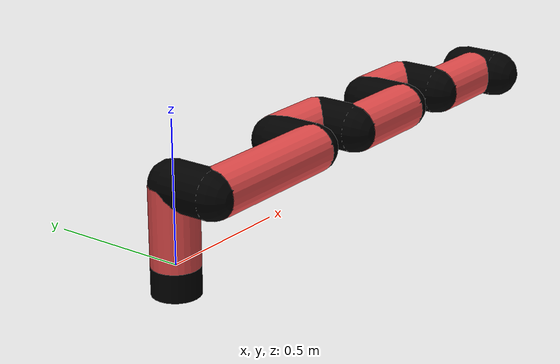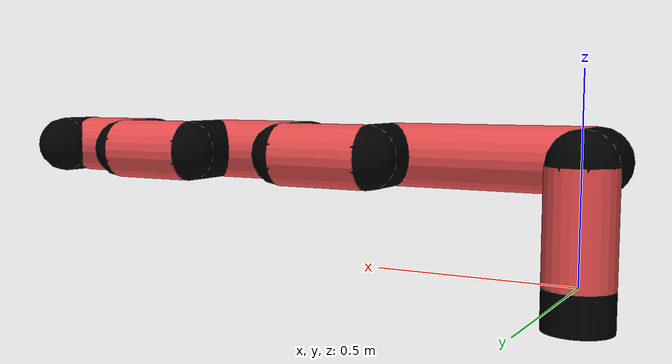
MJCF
<mujoco model="manipulator">
		<compiler angle="degree" coordinate="local" inertiafromgeom="auto" meshdir="meshes/"/>
		<option gravity="0 0 0" integrator="RK4" iterations="30" timestep="0.01"/>

		<default>
		<joint armature="1" limited="true" stiffness="10" damping="15" frictionloss="5.0"/>
		<geom conaffinity="1" condim="3" contype="1" friction=".5 .1 .1" margin="0.002"/>
		<motor ctrllimited="true"/>
		<position ctrllimited="true"/>
		</default>

		<asset>
		<texture builtin="gradient" height="100" rgb1="1.0 1.0 1.0" rgb2="1.0 1.0 1.0" type="skybox" width="100"/>
		<texture builtin="flat" height="32" name="arm_tex" rgb1="0.9 0.3 0.3" type="2d" width="32"/>
		<texture builtin="flat" height="32" name="gripper_tex" rgb1="0.0 0.0 0.0" type="cube" width="32"/>

		<material name="arm_mat" shininess="0.1" specular="0.1" texture="arm_tex"/>
		<material name="gripper_mat" shininess="1" specular="1" texture="gripper_tex"/>
		</asset>

		<worldbody>
		<light cutoff="45" diffuse=".8 .8 .8" dir="0 0.16 -1" directional="false" name="light" pos="0 -2.0 8.0" specular="0.3 0.3 0.3"/>

		<body name="base_link" pos="0 0 -0.1">
		<geom fromto="0 0 0 0 0 0.1" material="arm_mat" name="base_link" rgba="0.0 0.0 0.0 1" size="0.085" type="cylinder"/>
		</body>

		<body name="l1" pos="0 0 0">
<geom fromto="0 0 0 0 0 0.28" material="arm_mat" name="l1" rgba="0.9 0.3 0.3 1" size="0.085" type="cylinder"/>
<geom fromto="0 0 0.28 0 -0.16 0.28" material="arm_mat" name="l1_ex" rgba="0.0 0.0 0.0 1" size="0.085" type="capsule"/>
<joint axis="0 0 1" name="j1" pos="0 0 0" range="-90 90" damping="24.13" frictionloss="10.8"/>

<body name="l2" pos="0 -0.16 0.28">
<geom fromto="0 0 0 0.54 0 0" material="arm_mat" name="l2" rgba="0.9 0.3 0.3 1" size="0.085" type="cylinder"/>
<geom fromto="0.54 0 0 0.54 0.16 0" material="arm_mat" name="l2_ex" rgba="0.0 0.0 0.0 1" size="0.085" type="capsule"/>
<joint axis="0.0 1.0 0.0" name="j2" pos="0 0 0" range="-90 60" damping="28.42" frictionloss="8.56"/>

<body name="l3" pos="0.54 0.16 0">
<geom fromto="0 0 0 0.25 0 0" material="arm_mat" name="l3" rgba="0.9 0.3 0.3 1" size="0.085" type="cylinder"/>
<geom fromto="0.25 0 0 0.25 -0.16 0" material="arm_mat" name="l3_ex" rgba="0.0 0.0 0.0 1" size="0.085" type="capsule"/>
<joint axis="0.0 1.0 0.0" name="j3" pos="0 0 0" range="-30 60" damping="26.53" frictionloss="12.26"/>

<body name="l4" pos="0.25 -0.16 0">
<geom fromto="0 0 0 0.31 0 0" material="arm_mat" name="l4" rgba="0.9 0.3 0.3 1" size="0.085" type="cylinder"/>
<geom fromto="0.31 0 0 0.31 0.16 0" material="arm_mat" name="l4_ex" rgba="0.0 0.0 0.0 1" size="0.085" type="capsule"/>
<joint axis="0.0 1.0 0.0" name="j4" pos="0 0 0" range="-30 60" damping="36.39" frictionloss="9.51"/>

<body name="l5" pos="0.31 0.16 0">
<geom fromto="0 0 0 0.24 0 0" material="arm_mat" name="l5" rgba="0.9 0.3 0.3 1" size="0.085" type="cylinder"/>
<geom fromto="0.24 0 0 0.24 -0.16 0" material="arm_mat" name="l5_ex" rgba="0.0 0.0 0.0 1" size="0.085" type="capsule"/>
<joint axis="0.0 1.0 0.0" name="j5" pos="0 0 0" range="-30 60" damping="24.49" frictionloss="12.14"/>

<body name="l6" pos="0.24 -0.16 0">
<geom fromto="0 0 0 0.27 0 0" material="arm_mat" name="l6" rgba="0.9 0.3 0.3 1" size="0.085" type="cylinder"/>
<joint axis="0.0 1.0 0.0" name="j6" pos="0 0 0" range="-30 60" damping="23.15" frictionloss="11.05"/>

<body name="gripper" pos="0.27 0 0">
<geom fromto="0.05 -0.07 0 0.05 0.07 0" material="gripper_mat" name="gripper" rgba="0.0 0.0 0.0 1" size="0.085" type="capsule"/><joint axis="1 0 0" name="j7" pos="0 0 0" range="-90 90" damping="15" frictionloss="5.0"/><body name="finger" pos="0.1 0 0">
<geom fromto="0 0.0 0 0.1 0.0 0" material="gripper_mat" name="finger" rgba="0.0 0.0 0.0 1" size="0.020 0.06 0.06" type="box"/>
</body>
<site name="current" pos="0.2 0. 0.0" rgba="0. 0. 1.0 1" size="0.02" type="sphere"/>
</body>
</body>
</body>
</body>
</body>
</body>
</body>
</worldbody>
<actuator>
<motor ctrllimited="true" ctrlrange="-1.0 1.0" joint="j1" gear="78.17"/>
<motor ctrllimited="true" ctrlrange="-1.0 1.0" joint="j2" gear="73.34"/>
<motor ctrllimited="true" ctrlrange="-1.0 1.0" joint="j3" gear="67.84"/>
<motor ctrllimited="true" ctrlrange="-1.0 1.0" joint="j4" gear="72.88"/>
<motor ctrllimited="true" ctrlrange="-1.0 1.0" joint="j5" gear="78.82"/>
<motor ctrllimited="true" ctrlrange="-1.0 1.0" joint="j6" gear="65.37"/>
<motor ctrllimited="true" ctrlrange="-1.0 1.0" joint="j7" gear="80"/>
</actuator>
</mujoco>
